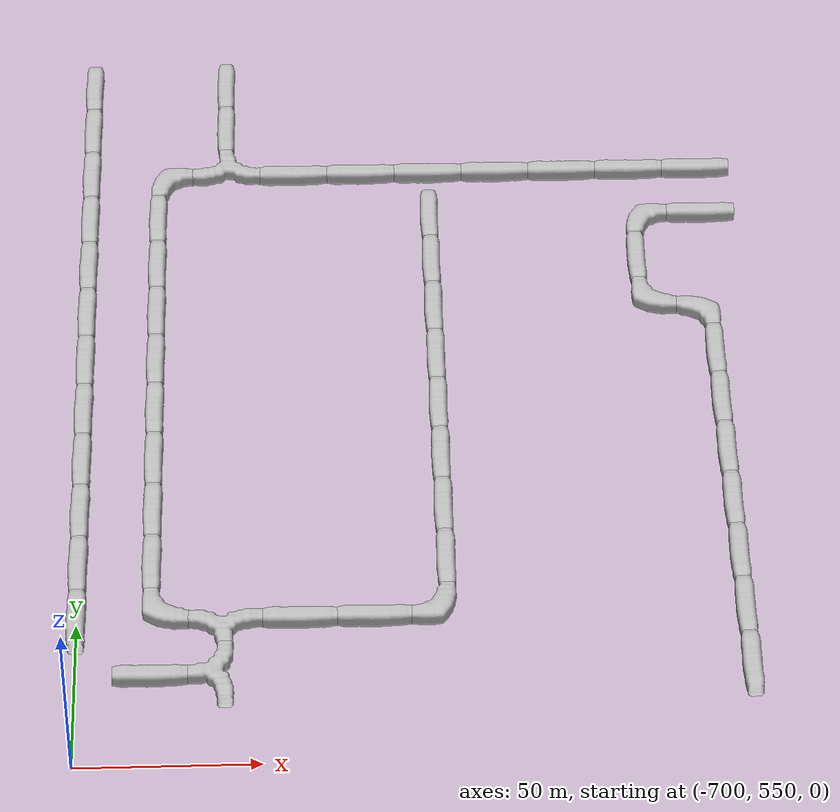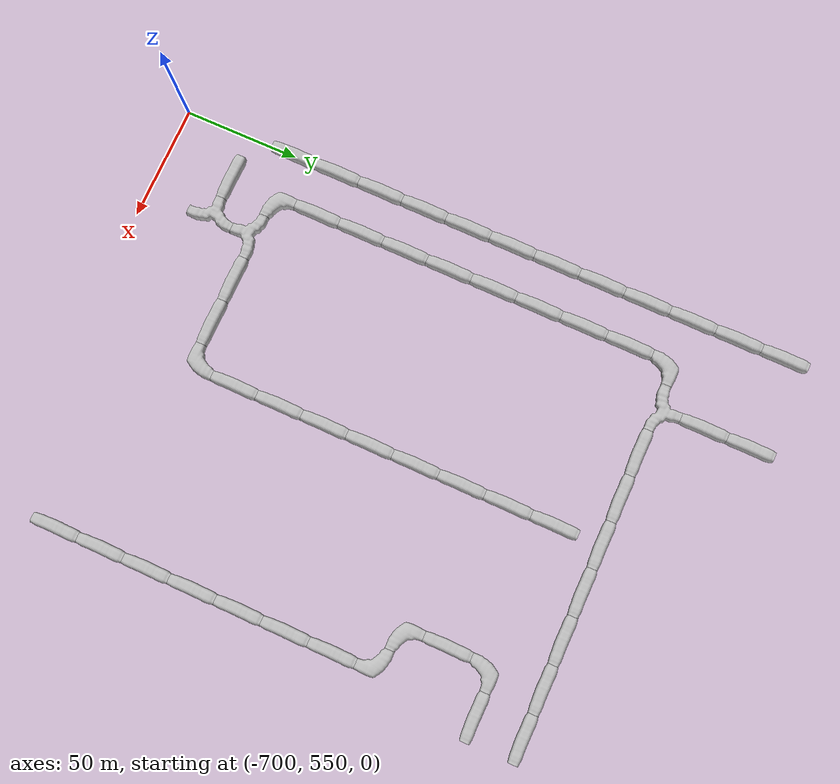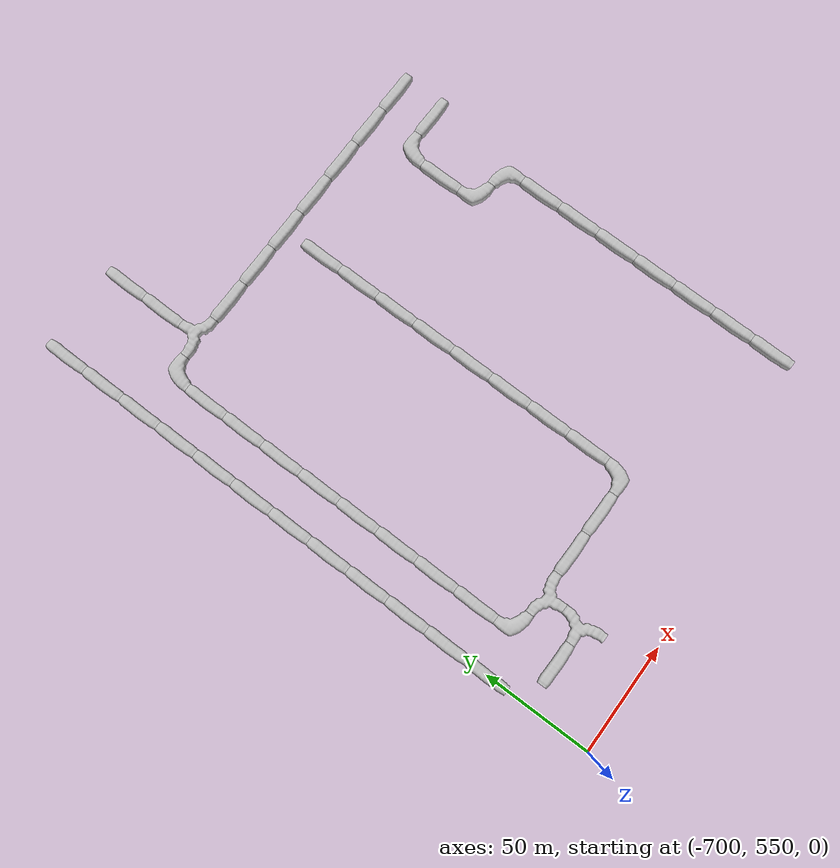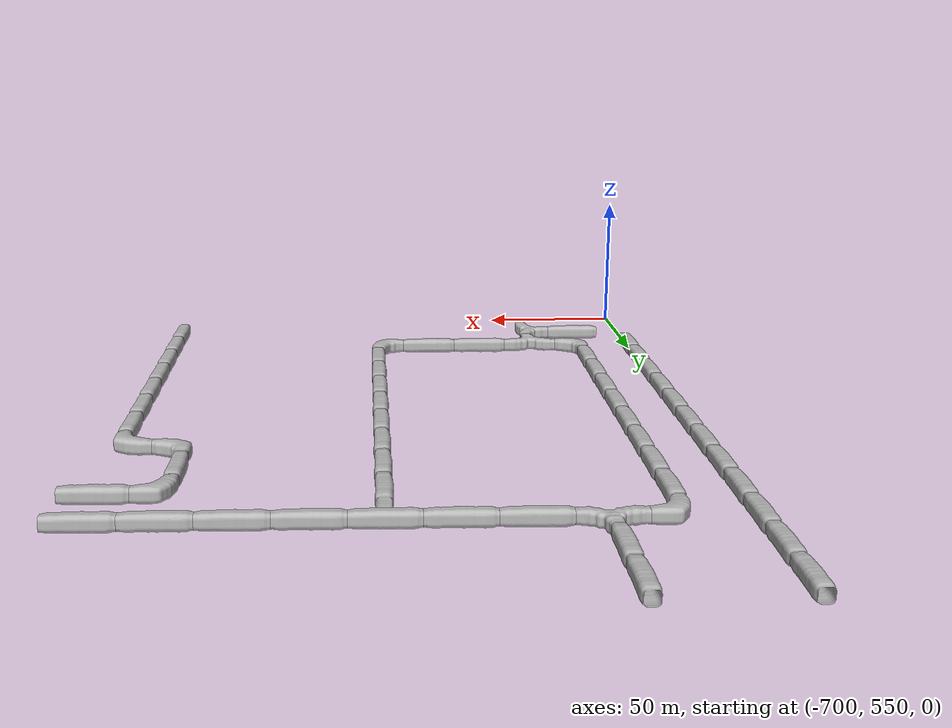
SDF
<sdf version="1.6">
 <world name="cave_32000_8">
  <include>
   <static>true</static>
   <name>cave_-26_29</name>
   <pose>-520 580 0 0 0 0.0</pose>
   <uri>model://cave_straight_20m</uri>
  </include>
  <include>
   <static>true</static>
   <name>cave_-26_30</name>
   <pose>-520 600 0 0 0 0.0</pose>
   <uri>model://cave_straight_20m</uri>
  </include>
  <include>
   <static>true</static>
   <name>cave_-26_31</name>
   <pose>-520 620 0 0 0 0.0</pose>
   <uri>model://cave_straight_20m</uri>
  </include>
  <include>
   <static>true</static>
   <name>cave_-26_32</name>
   <pose>-520 640 0 0 0 0.0</pose>
   <uri>model://cave_straight_20m</uri>
  </include>
  <include>
   <static>true</static>
   <name>cave_-26_33</name>
   <pose>-520 660 0 0 0 0.0</pose>
   <uri>model://cave_straight_20m</uri>
  </include>
  <include>
   <static>true</static>
   <name>cave_-26_34</name>
   <pose>-520 680 0 0 0 0.0</pose>
   <uri>model://cave_straight_20m</uri>
  </include>
  <include>
   <static>true</static>
   <name>cave_-26_35</name>
   <pose>-520 700 0 0 0 0.0</pose>
   <uri>model://cave_straight_20m</uri>
  </include>
  <include>
   <static>true</static>
   <name>cave_-26_36</name>
   <pose>-520 720 0 0 0 3.141592653589793</pose>
   <uri>model://cave_L_20m</uri>
  </include>
  <include>
   <static>true</static>
   <name>cave_-27_36</name>
   <pose>-540 720 0 0 0 0.0</pose>
   <uri>model://cave_L_20m</uri>
  </include>
  <include>
   <static>true</static>
   <name>cave_-27_37</name>
   <pose>-540 740 0 0 0 0.0</pose>
   <uri>model://cave_straight_20m</uri>
  </include>
  <include>
   <static>true</static>
   <name>cave_-27_38</name>
   <pose>-540 760 0 0 0 -1.5707963267948966</pose>
   <uri>model://cave_L_20m</uri>
  </include>
  <include>
   <static>true</static>
   <name>cave_-26_38</name>
   <pose>-520 760 0 0 0 1.5707963267948966</pose>
   <uri>model://cave_straight_20m</uri>
  </include>
  <include>
   <static>true</static>
   <name>cave_-26_39</name>
   <pose>-520 780 0 0 0 1.5707963267948966</pose>
   <uri>model://cave_straight_20m</uri>
  </include>
  <include>
   <static>true</static>
   <name>cave_-27_39</name>
   <pose>-540 780 0 0 0 1.5707963267948966</pose>
   <uri>model://cave_straight_20m</uri>
  </include>
  <include>
   <static>true</static>
   <name>cave_-28_39</name>
   <pose>-560 780 0 0 0 1.5707963267948966</pose>
   <uri>model://cave_straight_20m</uri>
  </include>
  <include>
   <static>true</static>
   <name>cave_-29_39</name>
   <pose>-580 780 0 0 0 1.5707963267948966</pose>
   <uri>model://cave_straight_20m</uri>
  </include>
  <include>
   <static>true</static>
   <name>cave_-30_39</name>
   <pose>-600 780 0 0 0 1.5707963267948966</pose>
   <uri>model://cave_straight_20m</uri>
  </include>
  <include>
   <static>true</static>
   <name>cave_-31_39</name>
   <pose>-620 780 0 0 0 1.5707963267948966</pose>
   <uri>model://cave_straight_20m</uri>
  </include>
  <include>
   <static>true</static>
   <name>cave_-32_39</name>
   <pose>-640 780 0 0 0 1.5707963267948966</pose>
   <uri>model://cave_straight_20m</uri>
  </include>
  <include>
   <static>true</static>
   <name>cave_-33_39</name>
   <pose>-660 780 0 0 0 0.0</pose>
   <uri>model://cave_3way_20m</uri>
  </include>
  <include>
   <static>true</static>
   <name>cave_-34_39</name>
   <pose>-680 780 0 0 0 -1.5707963267948966</pose>
   <uri>model://cave_L_20m</uri>
  </include>
  <include>
   <static>true</static>
   <name>cave_-34_38</name>
   <pose>-680 760 0 0 0 0.0</pose>
   <uri>model://cave_straight_20m</uri>
  </include>
  <include>
   <static>true</static>
   <name>cave_-34_37</name>
   <pose>-680 740 0 0 0 0.0</pose>
   <uri>model://cave_straight_20m</uri>
  </include>
  <include>
   <static>true</static>
   <name>cave_-34_36</name>
   <pose>-680 720 0 0 0 0.0</pose>
   <uri>model://cave_straight_20m</uri>
  </include>
  <include>
   <static>true</static>
   <name>cave_-34_35</name>
   <pose>-680 700 0 0 0 0.0</pose>
   <uri>model://cave_straight_20m</uri>
  </include>
  <include>
   <static>true</static>
   <name>cave_-34_34</name>
   <pose>-680 680 0 0 0 0.0</pose>
   <uri>model://cave_straight_20m</uri>
  </include>
  <include>
   <static>true</static>
   <name>cave_-34_33</name>
   <pose>-680 660 0 0 0 0.0</pose>
   <uri>model://cave_straight_20m</uri>
  </include>
  <include>
   <static>true</static>
   <name>cave_-34_32</name>
   <pose>-680 640 0 0 0 0.0</pose>
   <uri>model://cave_straight_20m</uri>
  </include>
  <include>
   <static>true</static>
   <name>cave_-34_31</name>
   <pose>-680 620 0 0 0 0.0</pose>
   <uri>model://cave_straight_20m</uri>
  </include>
  <include>
   <static>true</static>
   <name>cave_-34_30</name>
   <pose>-680 600 0 0 0 0.0</pose>
   <uri>model://cave_L_20m</uri>
  </include>
  <include>
   <static>true</static>
   <name>cave_-33_30</name>
   <pose>-660 600 0 0 0 3.141592653589793</pose>
   <uri>model://cave_3way_20m</uri>
  </include>
  <include>
   <static>true</static>
   <name>cave_-32_30</name>
   <pose>-640 600 0 0 0 1.5707963267948966</pose>
   <uri>model://cave_straight_20m</uri>
  </include>
  <include>
   <static>true</static>
   <name>cave_-31_30</name>
   <pose>-620 600 0 0 0 1.5707963267948966</pose>
   <uri>model://cave_straight_20m</uri>
  </include>
  <include>
   <static>true</static>
   <name>cave_-30_30</name>
   <pose>-600 600 0 0 0 1.5707963267948966</pose>
   <uri>model://cave_L_20m</uri>
  </include>
  <include>
   <static>true</static>
   <name>cave_-30_31</name>
   <pose>-600 620 0 0 0 0.0</pose>
   <uri>model://cave_straight_20m</uri>
  </include>
  <include>
   <static>true</static>
   <name>cave_-30_32</name>
   <pose>-600 640 0 0 0 0.0</pose>
   <uri>model://cave_straight_20m</uri>
  </include>
  <include>
   <static>true</static>
   <name>cave_-30_33</name>
   <pose>-600 660 0 0 0 0.0</pose>
   <uri>model://cave_straight_20m</uri>
  </include>
  <include>
   <static>true</static>
   <name>cave_-30_34</name>
   <pose>-600 680 0 0 0 0.0</pose>
   <uri>model://cave_straight_20m</uri>
  </include>
  <include>
   <static>true</static>
   <name>cave_-30_35</name>
   <pose>-600 700 0 0 0 0.0</pose>
   <uri>model://cave_straight_20m</uri>
  </include>
  <include>
   <static>true</static>
   <name>cave_-30_36</name>
   <pose>-600 720 0 0 0 0.0</pose>
   <uri>model://cave_straight_20m</uri>
  </include>
  <include>
   <static>true</static>
   <name>cave_-30_37</name>
   <pose>-600 740 0 0 0 0.0</pose>
   <uri>model://cave_straight_20m</uri>
  </include>
  <include>
   <static>true</static>
   <name>cave_-30_38</name>
   <pose>-600 760 0 0 0 0.0</pose>
   <uri>model://cave_straight_20m</uri>
  </include>
  <include>
   <static>true</static>
   <name>cave_-33_29</name>
   <pose>-660 580 0 0 0 1.5707963267948966</pose>
   <uri>model://cave_3way_20m</uri>
  </include>
  <include>
   <static>true</static>
   <name>cave_-34_29</name>
   <pose>-680 580 0 0 0 1.5707963267948966</pose>
   <uri>model://cave_straight_20m</uri>
  </include>
  <include>
   <static>true</static>
   <name>cave_-35_30</name>
   <pose>-700 600 0 0 0 0.0</pose>
   <uri>model://cave_straight_20m</uri>
  </include>
  <include>
   <static>true</static>
   <name>cave_-35_31</name>
   <pose>-700 620 0 0 0 0.0</pose>
   <uri>model://cave_straight_20m</uri>
  </include>
  <include>
   <static>true</static>
   <name>cave_-35_32</name>
   <pose>-700 640 0 0 0 0.0</pose>
   <uri>model://cave_straight_20m</uri>
  </include>
  <include>
   <static>true</static>
   <name>cave_-35_33</name>
   <pose>-700 660 0 0 0 0.0</pose>
   <uri>model://cave_straight_20m</uri>
  </include>
  <include>
   <static>true</static>
   <name>cave_-35_34</name>
   <pose>-700 680 0 0 0 0.0</pose>
   <uri>model://cave_straight_20m</uri>
  </include>
  <include>
   <static>true</static>
   <name>cave_-35_35</name>
   <pose>-700 700 0 0 0 0.0</pose>
   <uri>model://cave_straight_20m</uri>
  </include>
  <include>
   <static>true</static>
   <name>cave_-35_36</name>
   <pose>-700 720 0 0 0 0.0</pose>
   <uri>model://cave_straight_20m</uri>
  </include>
  <include>
   <static>true</static>
   <name>cave_-35_37</name>
   <pose>-700 740 0 0 0 0.0</pose>
   <uri>model://cave_straight_20m</uri>
  </include>
  <include>
   <static>true</static>
   <name>cave_-35_38</name>
   <pose>-700 760 0 0 0 0.0</pose>
   <uri>model://cave_straight_20m</uri>
  </include>
  <include>
   <static>true</static>
   <name>cave_-35_39</name>
   <pose>-700 780 0 0 0 0.0</pose>
   <uri>model://cave_straight_20m</uri>
  </include>
  <include>
   <static>true</static>
   <name>cave_-35_40</name>
   <pose>-700 800 0 0 0 0.0</pose>
   <uri>model://cave_straight_20m</uri>
  </include>
  <include>
   <static>true</static>
   <name>cave_-35_41</name>
   <pose>-700 820 0 0 0 0.0</pose>
   <uri>model://cave_straight_20m</uri>
  </include>
  <include>
   <static>true</static>
   <name>cave_-33_40</name>
   <pose>-660 800 0 0 0 0.0</pose>
   <uri>model://cave_straight_20m</uri>
  </include>
  <include>
   <static>true</static>
   <name>cave_-33_41</name>
   <pose>-660 820 0 0 0 0.0</pose>
   <uri>model://cave_straight_20m</uri>
  </include>
 </world>
</sdf>
